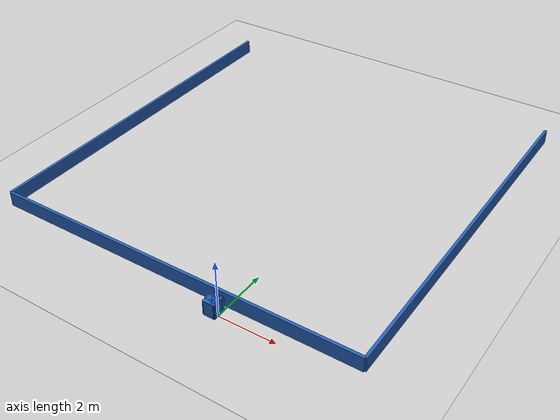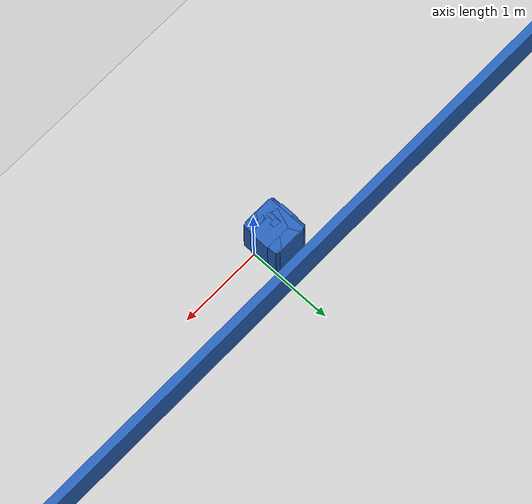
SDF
<?xml version="1.0" ?>
    <sdf version="1.5">
      <world name="default">
        <!-- A global light source -->
        <include>
          <uri>model://sun</uri>
        </include>
        <!-- A ground plane -->
        <include>
          <uri>model://ground_plane</uri>
        </include>

    <model name='libopen_space_final_T2B_103_85'>
      <static>1</static>
      <pose frame=''>-0.225000 0.075000 0.000000 0.000000 0.000000 0.000000</pose>
      <link name='link'>
        <inertial>
          <mass>1</mass>
          <inertia>
            <ixx>0.145833</ixx>
            <ixy>0</ixy>
            <ixz>0</ixz>
            <iyy>0.145833</iyy>
            <iyz>0</iyz>
            <izz>0.125</izz>
          </inertia>
        </inertial>
        <collision name='collision'>
          <geometry>
            <box>
              <size>0.33 0.24 1</size>
            </box>
          </geometry>
          <max_contacts>10</max_contacts>
          <surface>
            <contact>
              <ode/>
            </contact>
            <bounce/>
            <friction>
              <torsional>
                <ode/>
              </torsional>
              <ode/>
            </friction>
          </surface>
        </collision>
        <visual name='visual'>
          <geometry>
            <box>
              <size>0.33 0.24 1</size>
            </box>
          </geometry>
	    <material>
              <ambient>0.152000 0.379000 0.720000 1</ambient>
	      <diffuse>0.152000 0.379000 0.720000 1</diffuse>
          </material>
          <material>
            <script>
              <name>Gazebo/Grey</name>
              <uri>file://media/materials/scripts/gazebo.material</uri>
            </script>
          </material>
        </visual>
        <self_collide>0</self_collide>
        <kinematic>0</kinematic>
        <gravity>1</gravity>
      </link>
      <plugin name='libopen_space_final_T2B_103_85' filename='libopen_space_final_T2B_103_85.so'/>
    </model>

    <model name='libopen_space_final_T2B_61_88'>
      <static>1</static>
      <pose frame=''>-0.225000 0.075000 0.000000 0.000000 0.000000 0.000000</pose>
      <link name='link'>
        <inertial>
          <mass>1</mass>
          <inertia>
            <ixx>0.145833</ixx>
            <ixy>0</ixy>
            <ixz>0</ixz>
            <iyy>0.145833</iyy>
            <iyz>0</iyz>
            <izz>0.125</izz>
          </inertia>
        </inertial>
        <collision name='collision'>
          <geometry>
            <box>
              <size>0.35 0.49 1</size>
            </box>
          </geometry>
          <max_contacts>10</max_contacts>
          <surface>
            <contact>
              <ode/>
            </contact>
            <bounce/>
            <friction>
              <torsional>
                <ode/>
              </torsional>
              <ode/>
            </friction>
          </surface>
        </collision>
        <visual name='visual'>
          <geometry>
            <box>
              <size>0.35 0.49 1</size>
            </box>
          </geometry>
	    <material>
              <ambient>0.152000 0.379000 0.720000 1</ambient>
	      <diffuse>0.152000 0.379000 0.720000 1</diffuse>
          </material>
          <material>
            <script>
              <name>Gazebo/Grey</name>
              <uri>file://media/materials/scripts/gazebo.material</uri>
            </script>
          </material>
        </visual>
        <self_collide>0</self_collide>
        <kinematic>0</kinematic>
        <gravity>1</gravity>
      </link>
      <plugin name='libopen_space_final_T2B_61_88' filename='libopen_space_final_T2B_61_88.so'/>
    </model>

    <model name='libopen_space_final_T2B_80_70'>
      <static>1</static>
      <pose frame=''>-0.225000 0.075000 0.000000 0.000000 0.000000 0.000000</pose>
      <link name='link'>
        <inertial>
          <mass>1</mass>
          <inertia>
            <ixx>0.145833</ixx>
            <ixy>0</ixy>
            <ixz>0</ixz>
            <iyy>0.145833</iyy>
            <iyz>0</iyz>
            <izz>0.125</izz>
          </inertia>
        </inertial>
        <collision name='collision'>
          <geometry>
            <box>
              <size>0.42 0.47 1</size>
            </box>
          </geometry>
          <max_contacts>10</max_contacts>
          <surface>
            <contact>
              <ode/>
            </contact>
            <bounce/>
            <friction>
              <torsional>
                <ode/>
              </torsional>
              <ode/>
            </friction>
          </surface>
        </collision>
        <visual name='visual'>
          <geometry>
            <box>
              <size>0.42 0.47 1</size>
            </box>
          </geometry>
	    <material>
              <ambient>0.152000 0.379000 0.720000 1</ambient>
	      <diffuse>0.152000 0.379000 0.720000 1</diffuse>
          </material>
          <material>
            <script>
              <name>Gazebo/Grey</name>
              <uri>file://media/materials/scripts/gazebo.material</uri>
            </script>
          </material>
        </visual>
        <self_collide>0</self_collide>
        <kinematic>0</kinematic>
        <gravity>1</gravity>
      </link>
      <plugin name='libopen_space_final_T2B_80_70' filename='libopen_space_final_T2B_80_70.so'/>
    </model>

    <model name='libopen_space_final_T2B_125_48'>
      <static>1</static>
      <pose frame=''>-0.225000 0.075000 0.000000 0.000000 0.000000 0.000000</pose>
      <link name='link'>
        <inertial>
          <mass>1</mass>
          <inertia>
            <ixx>0.145833</ixx>
            <ixy>0</ixy>
            <ixz>0</ixz>
            <iyy>0.145833</iyy>
            <iyz>0</iyz>
            <izz>0.125</izz>
          </inertia>
        </inertial>
        <collision name='collision'>
          <geometry>
            <box>
              <size>0.25 0.33 1</size>
            </box>
          </geometry>
          <max_contacts>10</max_contacts>
          <surface>
            <contact>
              <ode/>
            </contact>
            <bounce/>
            <friction>
              <torsional>
                <ode/>
              </torsional>
              <ode/>
            </friction>
          </surface>
        </collision>
        <visual name='visual'>
          <geometry>
            <box>
              <size>0.25 0.33 1</size>
            </box>
          </geometry>
	    <material>
              <ambient>0.152000 0.379000 0.720000 1</ambient>
	      <diffuse>0.152000 0.379000 0.720000 1</diffuse>
          </material>
          <material>
            <script>
              <name>Gazebo/Grey</name>
              <uri>file://media/materials/scripts/gazebo.material</uri>
            </script>
          </material>
        </visual>
        <self_collide>0</self_collide>
        <kinematic>0</kinematic>
        <gravity>1</gravity>
      </link>
      <plugin name='libopen_space_final_T2B_125_48' filename='libopen_space_final_T2B_125_48.so'/>
    </model>

    <model name='libopen_space_final_T2B_125_59'>
      <static>1</static>
      <pose frame=''>-0.225000 0.075000 0.000000 0.000000 0.000000 0.000000</pose>
      <link name='link'>
        <inertial>
          <mass>1</mass>
          <inertia>
            <ixx>0.145833</ixx>
            <ixy>0</ixy>
            <ixz>0</ixz>
            <iyy>0.145833</iyy>
            <iyz>0</iyz>
            <izz>0.125</izz>
          </inertia>
        </inertial>
        <collision name='collision'>
          <geometry>
            <box>
              <size>0.15 0.10 1</size>
            </box>
          </geometry>
          <max_contacts>10</max_contacts>
          <surface>
            <contact>
              <ode/>
            </contact>
            <bounce/>
            <friction>
              <torsional>
                <ode/>
              </torsional>
              <ode/>
            </friction>
          </surface>
        </collision>
        <visual name='visual'>
          <geometry>
            <box>
              <size>0.15 0.10 1</size>
            </box>
          </geometry>
	    <material>
              <ambient>0.152000 0.379000 0.720000 1</ambient>
	      <diffuse>0.152000 0.379000 0.720000 1</diffuse>
          </material>
          <material>
            <script>
              <name>Gazebo/Grey</name>
              <uri>file://media/materials/scripts/gazebo.material</uri>
            </script>
          </material>
        </visual>
        <self_collide>0</self_collide>
        <kinematic>0</kinematic>
        <gravity>1</gravity>
      </link>
      <plugin name='libopen_space_final_T2B_125_59' filename='libopen_space_final_T2B_125_59.so'/>
    </model>

    <model name='libopen_space_final_T2B_83_66'>
      <static>1</static>
      <pose frame=''>-0.225000 0.075000 0.000000 0.000000 0.000000 0.000000</pose>
      <link name='link'>
        <inertial>
          <mass>1</mass>
          <inertia>
            <ixx>0.145833</ixx>
            <ixy>0</ixy>
            <ixz>0</ixz>
            <iyy>0.145833</iyy>
            <iyz>0</iyz>
            <izz>0.125</izz>
          </inertia>
        </inertial>
        <collision name='collision'>
          <geometry>
            <box>
              <size>0.38 0.18 1</size>
            </box>
          </geometry>
          <max_contacts>10</max_contacts>
          <surface>
            <contact>
              <ode/>
            </contact>
            <bounce/>
            <friction>
              <torsional>
                <ode/>
              </torsional>
              <ode/>
            </friction>
          </surface>
        </collision>
        <visual name='visual'>
          <geometry>
            <box>
              <size>0.38 0.18 1</size>
            </box>
          </geometry>
	    <material>
              <ambient>0.152000 0.379000 0.720000 1</ambient>
	      <diffuse>0.152000 0.379000 0.720000 1</diffuse>
          </material>
          <material>
            <script>
              <name>Gazebo/Grey</name>
              <uri>file://media/materials/scripts/gazebo.material</uri>
            </script>
          </material>
        </visual>
        <self_collide>0</self_collide>
        <kinematic>0</kinematic>
        <gravity>1</gravity>
      </link>
      <plugin name='libopen_space_final_T2B_83_66' filename='libopen_space_final_T2B_83_66.so'/>
    </model>

    <model name='libopen_space_final_T2B_106_71'>
      <static>1</static>
      <pose frame=''>-0.225000 0.075000 0.000000 0.000000 0.000000 0.000000</pose>
      <link name='link'>
        <inertial>
          <mass>1</mass>
          <inertia>
            <ixx>0.145833</ixx>
            <ixy>0</ixy>
            <ixz>0</ixz>
            <iyy>0.145833</iyy>
            <iyz>0</iyz>
            <izz>0.125</izz>
          </inertia>
        </inertial>
        <collision name='collision'>
          <geometry>
            <box>
              <size>0.46 0.23 1</size>
            </box>
          </geometry>
          <max_contacts>10</max_contacts>
          <surface>
            <contact>
              <ode/>
            </contact>
            <bounce/>
            <friction>
              <torsional>
                <ode/>
              </torsional>
              <ode/>
            </friction>
          </surface>
        </collision>
        <visual name='visual'>
          <geometry>
            <box>
              <size>0.46 0.23 1</size>
            </box>
          </geometry>
	    <material>
              <ambient>0.152000 0.379000 0.720000 1</ambient>
	      <diffuse>0.152000 0.379000 0.720000 1</diffuse>
          </material>
          <material>
            <script>
              <name>Gazebo/Grey</name>
              <uri>file://media/materials/scripts/gazebo.material</uri>
            </script>
          </material>
        </visual>
        <self_collide>0</self_collide>
        <kinematic>0</kinematic>
        <gravity>1</gravity>
      </link>
      <plugin name='libopen_space_final_T2B_106_71' filename='libopen_space_final_T2B_106_71.so'/>
    </model>

    <model name='libopen_space_final_T2B_120_90'>
      <static>1</static>
      <pose frame=''>-0.225000 0.075000 0.000000 0.000000 0.000000 0.000000</pose>
      <link name='link'>
        <inertial>
          <mass>1</mass>
          <inertia>
            <ixx>0.145833</ixx>
            <ixy>0</ixy>
            <ixz>0</ixz>
            <iyy>0.145833</iyy>
            <iyz>0</iyz>
            <izz>0.125</izz>
          </inertia>
        </inertial>
        <collision name='collision'>
          <geometry>
            <box>
              <size>0.16 0.48 1</size>
            </box>
          </geometry>
          <max_contacts>10</max_contacts>
          <surface>
            <contact>
              <ode/>
            </contact>
            <bounce/>
            <friction>
              <torsional>
                <ode/>
              </torsional>
              <ode/>
            </friction>
          </surface>
        </collision>
        <visual name='visual'>
          <geometry>
            <box>
              <size>0.16 0.48 1</size>
            </box>
          </geometry>
	    <material>
              <ambient>0.152000 0.379000 0.720000 1</ambient>
	      <diffuse>0.152000 0.379000 0.720000 1</diffuse>
          </material>
          <material>
            <script>
              <name>Gazebo/Grey</name>
              <uri>file://media/materials/scripts/gazebo.material</uri>
            </script>
          </material>
        </visual>
        <self_collide>0</self_collide>
        <kinematic>0</kinematic>
        <gravity>1</gravity>
      </link>
      <plugin name='libopen_space_final_T2B_120_90' filename='libopen_space_final_T2B_120_90.so'/>
    </model>

    <model name='libopen_space_final_T2B_81_89'>
      <static>1</static>
      <pose frame=''>-0.225000 0.075000 0.000000 0.000000 0.000000 0.000000</pose>
      <link name='link'>
        <inertial>
          <mass>1</mass>
          <inertia>
            <ixx>0.145833</ixx>
            <ixy>0</ixy>
            <ixz>0</ixz>
            <iyy>0.145833</iyy>
            <iyz>0</iyz>
            <izz>0.125</izz>
          </inertia>
        </inertial>
        <collision name='collision'>
          <geometry>
            <box>
              <size>0.18 0.46 1</size>
            </box>
          </geometry>
          <max_contacts>10</max_contacts>
          <surface>
            <contact>
              <ode/>
            </contact>
            <bounce/>
            <friction>
              <torsional>
                <ode/>
              </torsional>
              <ode/>
            </friction>
          </surface>
        </collision>
        <visual name='visual'>
          <geometry>
            <box>
              <size>0.18 0.46 1</size>
            </box>
          </geometry>
	    <material>
              <ambient>0.152000 0.379000 0.720000 1</ambient>
	      <diffuse>0.152000 0.379000 0.720000 1</diffuse>
          </material>
          <material>
            <script>
              <name>Gazebo/Grey</name>
              <uri>file://media/materials/scripts/gazebo.material</uri>
            </script>
          </material>
        </visual>
        <self_collide>0</self_collide>
        <kinematic>0</kinematic>
        <gravity>1</gravity>
      </link>
      <plugin name='libopen_space_final_T2B_81_89' filename='libopen_space_final_T2B_81_89.so'/>
    </model>

    <model name='libopen_space_final_T2B_96_0'>
      <static>1</static>
      <pose frame=''>-0.225000 0.075000 0.000000 0.000000 0.000000 0.000000</pose>
      <link name='link'>
        <inertial>
          <mass>1</mass>
          <inertia>
            <ixx>0.145833</ixx>
            <ixy>0</ixy>
            <ixz>0</ixz>
            <iyy>0.145833</iyy>
            <iyz>0</iyz>
            <izz>0.125</izz>
          </inertia>
        </inertial>
        <collision name='collision'>
          <geometry>
            <box>
              <size>0.16 0.28 1</size>
            </box>
          </geometry>
          <max_contacts>10</max_contacts>
          <surface>
            <contact>
              <ode/>
            </contact>
            <bounce/>
            <friction>
              <torsional>
                <ode/>
              </torsional>
              <ode/>
            </friction>
          </surface>
        </collision>
        <visual name='visual'>
          <geometry>
            <box>
              <size>0.16 0.28 1</size>
            </box>
          </geometry>
	    <material>
              <ambient>0.152000 0.379000 0.720000 1</ambient>
	      <diffuse>0.152000 0.379000 0.720000 1</diffuse>
          </material>
          <material>
            <script>
              <name>Gazebo/Grey</name>
              <uri>file://media/materials/scripts/gazebo.material</uri>
            </script>
          </material>
        </visual>
        <self_collide>0</self_collide>
        <kinematic>0</kinematic>
        <gravity>1</gravity>
      </link>
      <plugin name='libopen_space_final_T2B_96_0' filename='libopen_space_final_T2B_96_0.so'/>
    </model>

    <model name='libopen_space_final_T2B_103_35'>
      <static>1</static>
      <pose frame=''>-0.225000 0.075000 0.000000 0.000000 0.000000 0.000000</pose>
      <link name='link'>
        <inertial>
          <mass>1</mass>
          <inertia>
            <ixx>0.145833</ixx>
            <ixy>0</ixy>
            <ixz>0</ixz>
            <iyy>0.145833</iyy>
            <iyz>0</iyz>
            <izz>0.125</izz>
          </inertia>
        </inertial>
        <collision name='collision'>
          <geometry>
            <box>
              <size>0.44 0.44 1</size>
            </box>
          </geometry>
          <max_contacts>10</max_contacts>
          <surface>
            <contact>
              <ode/>
            </contact>
            <bounce/>
            <friction>
              <torsional>
                <ode/>
              </torsional>
              <ode/>
            </friction>
          </surface>
        </collision>
        <visual name='visual'>
          <geometry>
            <box>
              <size>0.44 0.44 1</size>
            </box>
          </geometry>
	    <material>
              <ambient>0.152000 0.379000 0.720000 1</ambient>
	      <diffuse>0.152000 0.379000 0.720000 1</diffuse>
          </material>
          <material>
            <script>
              <name>Gazebo/Grey</name>
              <uri>file://media/materials/scripts/gazebo.material</uri>
            </script>
          </material>
        </visual>
        <self_collide>0</self_collide>
        <kinematic>0</kinematic>
        <gravity>1</gravity>
      </link>
      <plugin name='libopen_space_final_T2B_103_35' filename='libopen_space_final_T2B_103_35.so'/>
    </model>

    <model name='libopen_space_final_T2B_100_36'>
      <static>1</static>
      <pose frame=''>-0.225000 0.075000 0.000000 0.000000 0.000000 0.000000</pose>
      <link name='link'>
        <inertial>
          <mass>1</mass>
          <inertia>
            <ixx>0.145833</ixx>
            <ixy>0</ixy>
            <ixz>0</ixz>
            <iyy>0.145833</iyy>
            <iyz>0</iyz>
            <izz>0.125</izz>
          </inertia>
        </inertial>
        <collision name='collision'>
          <geometry>
            <box>
              <size>0.38 0.47 1</size>
            </box>
          </geometry>
          <max_contacts>10</max_contacts>
          <surface>
            <contact>
              <ode/>
            </contact>
            <bounce/>
            <friction>
              <torsional>
                <ode/>
              </torsional>
              <ode/>
            </friction>
          </surface>
        </collision>
        <visual name='visual'>
          <geometry>
            <box>
              <size>0.38 0.47 1</size>
            </box>
          </geometry>
	    <material>
              <ambient>0.152000 0.379000 0.720000 1</ambient>
	      <diffuse>0.152000 0.379000 0.720000 1</diffuse>
          </material>
          <material>
            <script>
              <name>Gazebo/Grey</name>
              <uri>file://media/materials/scripts/gazebo.material</uri>
            </script>
          </material>
        </visual>
        <self_collide>0</self_collide>
        <kinematic>0</kinematic>
        <gravity>1</gravity>
      </link>
      <plugin name='libopen_space_final_T2B_100_36' filename='libopen_space_final_T2B_100_36.so'/>
    </model>

        <model name='bottom_wall'>
          <static>1</static>
          <pose frame=''>-2.25 0.5 0.000000 0.000000 0.000000 1.57079632</pose>
          <link name='link'>
            <inertial>
            <mass>1</mass>
            <inertia>
              <ixx>0.145833</ixx>
              <ixy>0</ixy>
              <ixz>0</ixz>
              <iyy>0.145833</iyy>
              <iyz>0</iyz>
              <izz>0.125</izz>
            </inertia>
            </inertial>
            <collision name='collision'>
            <geometry>
              <box>
              <size>0.1 13.5 1</size>
              </box>
            </geometry>
            <max_contacts>10</max_contacts>
            <surface>
              <contact>
              <ode/>
              </contact>
              <bounce/>
              <friction>
              <torsional>
                <ode/>
              </torsional>
              <ode/>
              </friction>
            </surface>
            </collision>
            <visual name='visual'>
            <geometry>
              <box>
              <size>0.1 13.5 1</size>
              </box>
            </geometry>
            <material>
              <ambient>0.152000 0.379000 0.720000 1</ambient>
            <diffuse>0.152000 0.379000 0.720000 1</diffuse>
            </material>
            <material>
              <script>
              <name>Gazebo/Grey</name>
              <uri>file://media/materials/scripts/gazebo.material</uri>
              </script>
            </material>
            </visual>
            <self_collide>0</self_collide>
            <kinematic>0</kinematic>
            <gravity>1</gravity>
          </link>
        </model>

        <model name='left_wall'>
          <static>1</static>
          <pose frame=''>-9 7.25 0.000000 0.000000 0.000000 0.000000</pose>
          <link name='link'>
            <inertial>
            <mass>1</mass>
            <inertia>
              <ixx>0.145833</ixx>
              <ixy>0</ixy>
              <ixz>0</ixz>
              <iyy>0.145833</iyy>
              <iyz>0</iyz>
              <izz>0.125</izz>
            </inertia>
            </inertial>
            <collision name='collision'>
            <geometry>
              <box>
              <size>0.1 13.5 1</size>
              </box>
            </geometry>
            <max_contacts>10</max_contacts>
            <surface>
              <contact>
              <ode/>
              </contact>
              <bounce/>
              <friction>
              <torsional>
                <ode/>
              </torsional>
              <ode/>
              </friction>
            </surface>
            </collision>
            <visual name='visual'>
            <geometry>
              <box>
              <size>0.1 13.5 1</size>
              </box>
            </geometry>
            <material>
              <ambient>0.152000 0.379000 0.720000 1</ambient>
            <diffuse>0.152000 0.379000 0.720000 1</diffuse>
            </material>
            <material>
              <script>
              <name>Gazebo/Grey</name>
              <uri>file://media/materials/scripts/gazebo.material</uri>
              </script>
            </material>
            </visual>
            <self_collide>0</self_collide>
            <kinematic>0</kinematic>
            <gravity>1</gravity>
          </link>
        </model>

        <model name='right_wall'>
          <static>1</static>
          <pose frame=''>4.5 7.25 0.000000 0.000000 0.000000 0.000000</pose>
          <link name='link'>
            <inertial>
            <mass>1</mass>
            <inertia>
              <ixx>0.145833</ixx>
              <ixy>0</ixy>
              <ixz>0</ixz>
              <iyy>0.145833</iyy>
              <iyz>0</iyz>
              <izz>0.125</izz>
            </inertia>
            </inertial>
            <collision name='collision'>
            <geometry>
              <box>
              <size>0.1 13.5 1</size>
              </box>
            </geometry>
            <max_contacts>10</max_contacts>
            <surface>
              <contact>
              <ode/>
              </contact>
              <bounce/>
              <friction>
              <torsional>
                <ode/>
              </torsional>
              <ode/>
              </friction>
            </surface>
            </collision>
            <visual name='visual'>
            <geometry>
              <box>
              <size>0.1 13.5 1</size>
              </box>
            </geometry>
            <material>
              <ambient>0.152000 0.379000 0.720000 1</ambient>
            <diffuse>0.152000 0.379000 0.720000 1</diffuse>
            </material>
            <material>
              <script>
              <name>Gazebo/Grey</name>
              <uri>file://media/materials/scripts/gazebo.material</uri>
              </script>
            </material>
            </visual>
            <self_collide>0</self_collide>
            <kinematic>0</kinematic>
            <gravity>1</gravity>
          </link>
        </model>

      </world>
    </sdf>"
